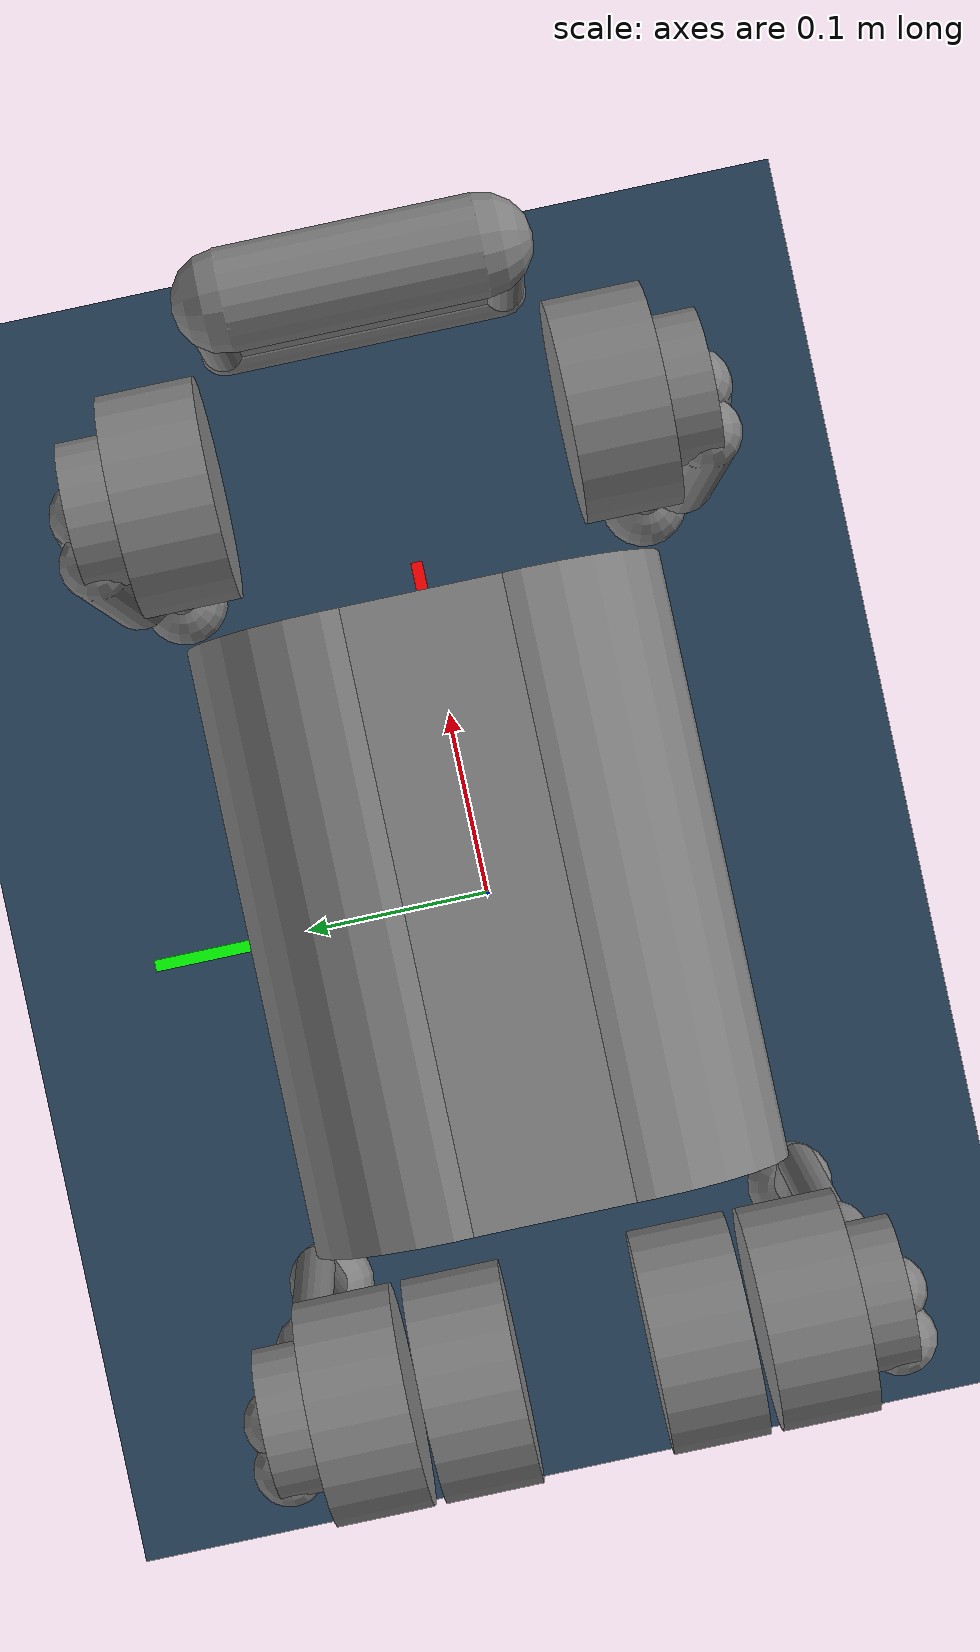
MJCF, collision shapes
<mujoco model="go1 scene">
    <include file="go1.xml"/>

    <statistic center="0 0 0.1" extent="0.8"/>

    <visual>
        <headlight diffuse="0.6 0.6 0.6" ambient="0.3 0.3 0.3" specular="0 0 0"/>
        <rgba haze="0.15 0.25 0.35 1"/>
        <global azimuth="120" elevation="-20"/>
    </visual>

    <asset>
        <texture type="skybox" builtin="gradient" rgb1="0.3 0.5 0.7" rgb2="0 0 0" width="512" height="3072"/>
        <texture type="2d" name="groundplane" builtin="checker" mark="edge" rgb1="0.2 0.3 0.4" rgb2="0.1 0.2 0.3"
                 markrgb="0.8 0.8 0.8" width="300" height="300"/>
        <material name="groundplane" texture="groundplane" texuniform="true" texrepeat="5 5" reflectance="0.2"/>
    </asset>

    <worldbody>
        <light pos="0 0 1.5" dir="0 0 -1" directional="true"/>
        <geom name="floor" size="0 0 0.05" type="plane" material="groundplane"/>

        <body mocap="true" name="esti_indicator" pos="0.0 0.0 0.1">
            <site pos="0 0 0.075" size="0.003 0.003 0.1" type="box" name="mocap_left_site1" rgba="0 0 1 1"/>
            <site pos="0 0.075 0" size="0.003 0.1 0.003" type="box" name="mocap_left_site2" rgba="0 1 0 1"/>
            <site pos="0.075 0 0" size="0.1 0.003 0.003" type="box" name="mocap_left_site3" rgba="1 0 0 1"/>
        </body>

        <body mocap="true" name="start_pos" pos="0.0 0.0 0.1">
            <site pos="0 0 0.075" size="0.003 0.003 0.1" type="box" name="start_pos1" rgba="0 0 1 1"/>
            <site pos="0 0.075 0" size="0.003 0.1 0.003" type="box" name="start_pos2" rgba="0 1 0 1"/>
            <site pos="0.075 0 0" size="0.1 0.003 0.003" type="box" name="start_pos3" rgba="1 0 0 1"/>
        </body>
    </worldbody>
</mujoco>

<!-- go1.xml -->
<mujoco model="go1">
    <compiler angle="radian" meshdir="assets" autolimits="true" eulerseq="zyx"/>

    <option cone="elliptic" impratio="100" integrator="implicitfast" timestep="0.001" />
    <option iterations="50" solver="PGS" gravity="0 0 -9.81"/>
    <default>
        <default class="go1">
            <geom friction="0.6" margin="0.001" condim="1"/>
            <joint axis="0 1 0" damping="0.00" armature="0.01" frictionloss="0.00"/>
            <default class="abduction">
                <joint axis="1 0 0" damping="1" range="-0.863 0.863"/>
                <motor ctrlrange="-25 25"/>
            </default>
            <default class="hip">
                <joint range="-0.686 4.501"/>
                <motor ctrlrange="-25 25"/>
            </default>
            <default class="knee">
                <joint range="-2.818 -0.888"/>
                <motor ctrlrange="-25 25"/>
            </default>
            <default class="visual">
                <geom type="mesh" contype="0" conaffinity="0" group="2" material="dark"/>
            </default>
            <default class="collision">
                <geom group="3" type="capsule"/>
                <default class="hip_left1">
                    <geom size="0.046 0.02" pos="0 0.045 0" quat="1 1 0 0" type="cylinder"/>
                </default>
                <default class="hip_left2">
                    <geom size="0.031 0.02" pos="0 0.065 0" quat="1 1 0 0" type="cylinder"/>
                </default>
                <default class="hip_left3">
                    <geom size="0.046 0.02" quat="1 1 0 0" type="cylinder"/>
                </default>
                <default class="hip_right1">
                    <geom size="0.046 0.02" pos="0 -0.045 0" quat="1 1 0 0" type="cylinder"/>
                </default>
                <default class="hip_right2">
                    <geom size="0.031 0.02" pos="0 -0.065 0" quat="1 1 0 0" type="cylinder"/>
                </default>
                <default class="hip_right3">
                    <geom size="0.046 0.02" quat="1 1 0 0" type="cylinder"/>
                </default>
                <default class="thigh1">
                    <geom size="0.015" fromto="-0.02 0 0 -0.02 0 -0.16"/>
                </default>
                <default class="thigh2">
                    <geom size="0.015" fromto="0 0 0 -0.02 0 -0.1"/>
                </default>
                <default class="thigh3">
                    <geom size="0.015" fromto="-0.02 0 -0.16 0 0 -0.2"/>
                </default>
                <default class="calf1">
                    <geom size="0.01" fromto="0 0 0 0.02 0 -0.13"/>
                </default>
                <default class="calf2">
                    <geom size="0.01" fromto="0.02 0 -0.13 0 0 -0.2"/>
                </default>
                <default class="foot">
                    <geom type="sphere" size="0.023" pos="0 0 -0.213" priority="1" solimp="0.015 1 0.023" condim="6"
                          friction="0.8 0.02 0.01"/>
                </default>
            </default>
        </default>
    </default>

    <asset>
        <material name="dark" rgba="0.1 0.1 0.1 1"/>
        <mesh class="go1" file="trunk.stl"/>
        <mesh class="go1" file="hip.stl"/>
        <mesh class="go1" file="thigh_mirror.stl"/>
        <mesh class="go1" file="calf.stl"/>
        <mesh class="go1" file="thigh.stl"/>
    </asset>

    <worldbody>
        <light name="spotlight" mode="targetbodycom" target="base" pos="0 -1 2"/>
        <body name="base" pos="0 0 0.445" childclass="go1">
            <camera name="tracking" mode="trackcom" pos="0 -1 0.8" xyaxes="1 0 0 0 1 1"/>
            <site name="head" pos="0.3 0 0" rgba="1 0 0 1" size="0.02" group="5"/>
            <inertial pos="0.0223 0.002 -0.0005" quat="-0.00342088 0.705204 0.000106698 0.708996" mass="5.204"
                      diaginertia="0.0716565 0.0630105 0.0168101"/>
            <freejoint/>
            <geom class="visual" mesh="trunk"/>
            <geom class="collision" size="0.125 0.04 0.057" type="box"/>
            <geom class="collision" quat="1 0 1 0" pos="0 -0.04 0" size="0.058 0.125" type="cylinder"/>
            <geom class="collision" quat="1 0 1 0" pos="0 +0.04 0" size="0.058 0.125" type="cylinder"/>
            <geom class="collision" pos="0.25 0 0" size="0.005 0.06 0.05" type="box"/>
            <geom class="collision" pos="0.25 0.06 -0.01" size="0.009 0.035"/>
            <geom class="collision" pos="0.25 -0.06 -0.01" size="0.009 0.035"/>
            <geom class="collision" pos="0.25 0 -0.05" size="0.01 0.06" quat="1 1 0 0"/>
            <geom class="collision" pos="0.255 0 0.0355" size="0.021 0.052" quat="1 1 0 0"/>
            <site name="imu" pos="0 0 0"/>
            <body name="fr_abad" pos="0.1881 -0.04675 0">
                <inertial pos="-0.0049166 0.00762615 -8.865e-05" quat="0.507341 0.514169 0.495027 0.482891" mass="0.68"
                          diaginertia="0.000734064 0.000468438 0.000398719"/>
                <joint class="abduction" name="fr_abad_joint"/>
                <geom class="visual" mesh="hip" quat="1 0 0 0"/>
                <geom class="hip_right1"/>
                <geom class="hip_right2"/>
                <body name="fr_hip" pos="0 -0.08 0">
                    <inertial pos="-0.00304722 0.019315 -0.0305004" quat="0.65243 -0.0272313 0.0775126 0.753383"
                              mass="1.009"
                              diaginertia="0.00478717 0.00460903 0.000709268"/>
                    <joint class="hip" name="fr_hip_joint"/>
                    <geom class="visual" mesh="thigh_mirror"/>
                    <geom class="thigh1"/>
                    <geom class="thigh2"/>
                    <geom class="thigh3"/>
                    <body name="fr_knee" pos="0 0 -0.213">
                        <inertial pos="0.00429862 0.000976676 -0.146197" quat="0.691246 0.00357467 0.00511118 0.722592"
                                  mass="0.195862" diaginertia="0.00149767 0.00148468 3.58427e-05"/>
                        <joint class="knee" name="fr_knee_joint"/>
                        <geom class="visual" mesh="calf"/>
                        <geom class="calf1"/>
                        <geom class="calf2"/>
                        <geom name="fr_foot" class="foot"/>
                        <site name="fr_foot_site" pos="0 0 -0.213" type="sphere" size="0.023" group="5"
                              rgba="0.941176471 0.364705882 0.368627451 1"/>
                    </body>
                </body>
            </body>
            <body name="fl_abad" pos="0.1881 0.04675 0">
                <inertial pos="-0.0049166 -0.00762615 -8.865e-05" quat="0.482891 0.495027 0.514169 0.507341" mass="0.68"
                          diaginertia="0.000734064 0.000468438 0.000398719"/>
                <joint class="abduction" name="fl_abad_joint"/>
                <geom class="visual" mesh="hip"/>
                <geom class="hip_left1"/>
                <geom class="hip_left2"/>
                <body name="fl_hip" pos="0 0.08 0">
                    <inertial pos="-0.00304722 -0.019315 -0.0305004" quat="0.753383 0.0775126 -0.0272313 0.65243"
                              mass="1.009"
                              diaginertia="0.00478717 0.00460903 0.000709268"/>
                    <joint class="hip" name="fl_hip_joint"/>
                    <geom class="visual" mesh="thigh"/>
                    <geom class="thigh1"/>
                    <geom class="thigh2"/>
                    <geom class="thigh3"/>
                    <body name="fl_knee" pos="0 0 -0.213">
                        <inertial pos="0.00429862 0.000976676 -0.146197" quat="0.691246 0.00357467 0.00511118 0.722592"
                                  mass="0.195862" diaginertia="0.00149767 0.00148468 3.58427e-05"/>
                        <joint class="knee" name="fl_knee_joint"/>
                        <geom class="visual" mesh="calf"/>
                        <geom class="calf1"/>
                        <geom class="calf2"/>
                        <geom name="fl_foot" class="foot"/>
                        <site name="fl_foot_site" rgba="0.941176471 0.364705882 0.368627451 1" pos="0 0 -0.213"
                              type="sphere" size="0.023" group="5"/>
                    </body>
                </body>
            </body>
            <body name="rr_abad" pos="-0.1881 -0.04675 0">
                <inertial pos="0.0049166 0.00762615 -8.865e-05" quat="0.495027 0.482891 0.507341 0.514169" mass="0.68"
                          diaginertia="0.000734064 0.000468438 0.000398719"/>
                <joint class="abduction" name="rr_abad_joint"/>
                <geom class="visual" quat="0 0 0 -1" mesh="hip"/>
                <geom class="hip_right1"/>
                <geom class="hip_right2"/>
                <geom class="hip_right3"/>
                <body name="rr_hip" pos="0 -0.08 0">
                    <inertial pos="-0.00304722 0.019315 -0.0305004" quat="0.65243 -0.0272313 0.0775126 0.753383"
                              mass="1.009"
                              diaginertia="0.00478717 0.00460903 0.000709268"/>
                    <joint class="hip" name="rr_hip_joint"/>
                    <geom class="visual" mesh="thigh_mirror"/>
                    <geom class="thigh1"/>
                    <geom class="thigh2"/>
                    <geom class="thigh3"/>
                    <body name="rr_knee" pos="0 0 -0.213">
                        <inertial pos="0.00429862 0.000976676 -0.146197" quat="0.691246 0.00357467 0.00511118 0.722592"
                                  mass="0.195862" diaginertia="0.00149767 0.00148468 3.58427e-05"/>
                        <joint class="knee" name="rr_knee_joint"/>
                        <geom class="visual" mesh="calf"/>
                        <geom class="calf1"/>
                        <geom class="calf2"/>
                        <geom name="rr_foot" class="foot"/>
                        <site name="rr_foot_site" rgba="0.941176471 0.364705882 0.368627451 1" pos="0 0 -0.213"
                              type="sphere" size="0.023" group="5"/>
                    </body>
                </body>
            </body>
            <body name="rl_abad" pos="-0.1881 0.04675 0">
                <inertial pos="0.0049166 -0.00762615 -8.865e-05" quat="0.514169 0.507341 0.482891 0.495027" mass="0.68"
                          diaginertia="0.000734064 0.000468438 0.000398719"/>
                <joint class="abduction" name="rl_abad_joint"/>
                <geom class="visual" quat="0 0 1 0" mesh="hip"/>
                <geom class="hip_left1"/>
                <geom class="hip_left2"/>
                <geom class="hip_left3"/>
                <body name="rl_hip" pos="0 0.08 0">
                    <inertial pos="-0.00304722 -0.019315 -0.0305004" quat="0.753383 0.0775126 -0.0272313 0.65243"
                              mass="1.009"
                              diaginertia="0.00478717 0.00460903 0.000709268"/>
                    <joint class="hip" name="rl_hip_joint"/>
                    <geom class="visual" mesh="thigh"/>
                    <geom class="thigh1"/>
                    <geom class="thigh2"/>
                    <geom class="thigh3"/>
                    <body name="rl_knee" pos="0 0 -0.213">
                        <inertial pos="0.00429862 0.000976676 -0.146197" quat="0.691246 0.00357467 0.00511118 0.722592"
                                  mass="0.195862" diaginertia="0.00149767 0.00148468 3.58427e-05"/>
                        <joint class="knee" name="rl_knee_joint"/>
                        <geom class="visual" mesh="calf"/>
                        <geom class="calf1"/>
                        <geom class="calf2"/>
                        <geom name="rl_foot" class="foot"/>
                        <site name="rl_foot_site" rgba="0.941176471 0.364705882 0.368627451 1" pos="0 0 -0.213"
                              type="sphere" size="0.023" group="5"/>
                    </body>
                </body>
            </body>
        </body>
    </worldbody>

    <actuator>
        <motor class="abduction" name="FR_ABAD" joint="fr_abad_joint"/>
        <motor class="hip" name="FR_HIP" joint="fr_hip_joint"/>
        <motor class="knee" name="FR_KNEE" joint="fr_knee_joint"/>
        <motor class="abduction" name="FL_ABAD" joint="fl_abad_joint"/>
        <motor class="hip" name="FL_HIP" joint="fl_hip_joint"/>
        <motor class="knee" name="FL_KNEE" joint="fl_knee_joint"/>
        <motor class="abduction" name="RR_ABAD" joint="rr_abad_joint"/>
        <motor class="hip" name="RR_HIP" joint="rr_hip_joint"/>
        <motor class="knee" name="RR_KNEE" joint="rr_knee_joint"/>
        <motor class="abduction" name="RL_ABAD" joint="rl_abad_joint"/>
        <motor class="hip" name="RL_HIP" joint="rl_hip_joint"/>
        <motor class="knee" name="RL_KNEE" joint="rl_knee_joint"/>
    </actuator>

    <sensor>
        <gyro name="body_gyro" site="imu"/>
        <framequat name="body_quat" objtype="site" objname="imu"/>
        <accelerometer name="body_acc" site="imu"/>
    </sensor>

    <keyframe>
        <key name="home" qpos="0 0 0.27 1 0 0 0 0 0.9 -1.8 0 0.9 -1.8 0 0.9 -1.8 0 0.9 -1.8"
             ctrl="0 0.9 -1.8 0 0.9 -1.8 0 0.9 -1.8 0 0.9 -1.8"/>
    </keyframe>
</mujoco>
